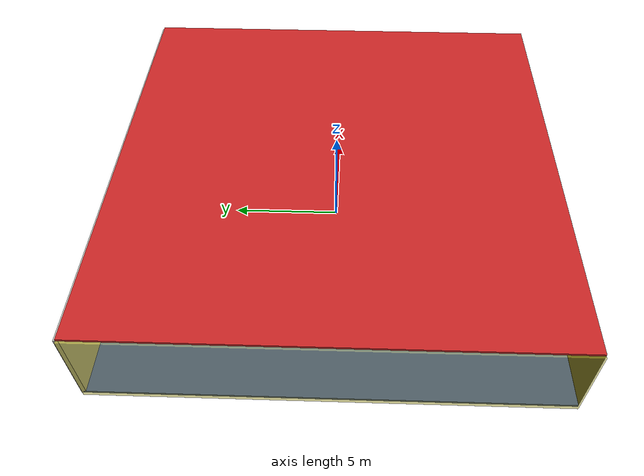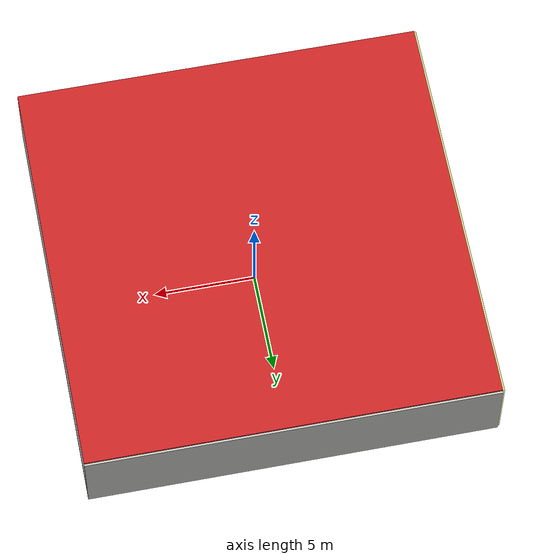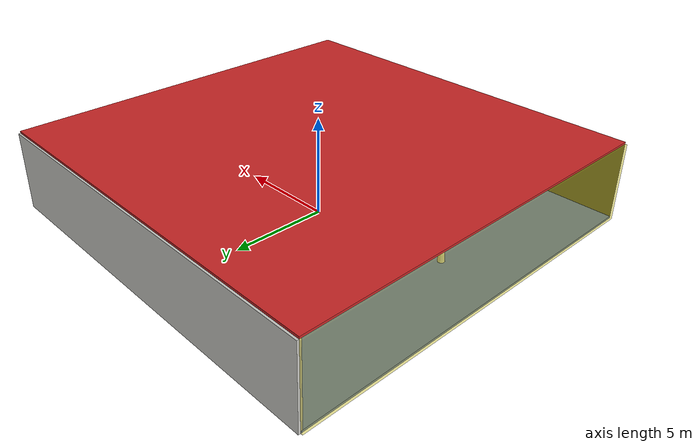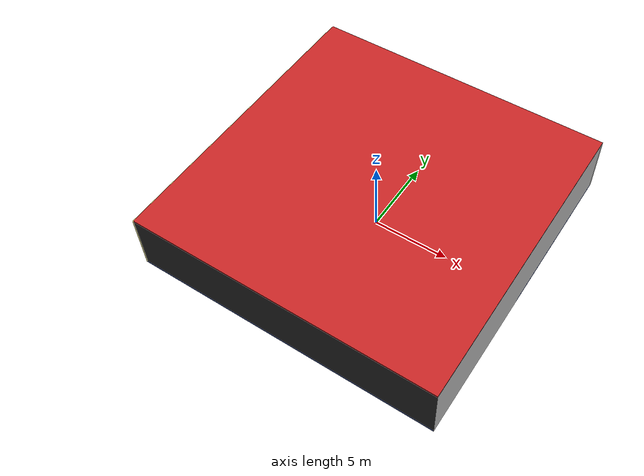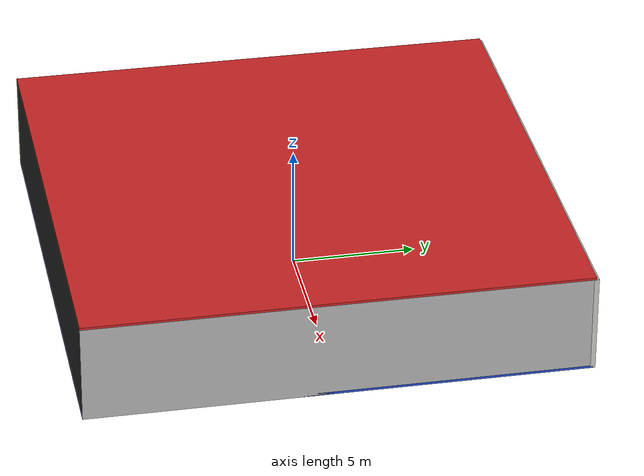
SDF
<sdf version="1.4">
 <world name="default">
  <physics type="ode">
   <max_step_size>0.001</max_step_size>
   <real_time_factor>1</real_time_factor>
   <real_time_update_rate>1000</real_time_update_rate>
   <gravity>0 0 -9.8</gravity>
  </physics>
  <scene><ambient>0.4 0.4 0.4 1</ambient><background>0.7 0.7 0.7 1</background><shadows>1</shadows></scene>
  <model name="Surrounding">
   <static>1</static>
   <link name="Ceiling">
    <collision name="Ceiling_Collision"><geometry><box><size>20 20 0.1</size></box></geometry></collision>
    <visual name="Ceiling_Visual">
     <geometry><box><size>20 20 0.1</size></box></geometry>
     <material>
      <script><uri>file://media/materials/scripts/gazebo.material</uri><name>Gazebo/RedGlow</name></script>
     </material>
    </visual>
    <pose>0 0 4.05 0 0 0</pose>
   </link>
   <link name="Wall_South">
    <collision name="Wall_South_Collision">
     <geometry><box><size>20 0 4</size></box></geometry>
     <pose>0 0 2 0 -0 0</pose>
    </collision>
    <visual name="Wall_South_Visual">
     <pose>0 0 2 0 -0 0</pose>
     <geometry><box><size>20 0 4</size></box></geometry>
     <material>
      <script><uri>file://media/materials/scripts/gazebo.material</uri><name>Gazebo/FlatBlack</name></script>
     </material>
    </visual>
    <velocity_decay><linear>0</linear><angular>0</angular></velocity_decay>
    <pose>0 -10 0 0 -0 0</pose>
   </link>
   <link name="Wall_East">
    <collision name="Wall_21_Collision">
     <geometry><box><size>20 0 4</size></box></geometry>
     <pose>0 0 2 0 -0 0</pose>
    </collision>
    <visual name="Wall_21_Visual">
     <pose>0 0 2 0 -0 0</pose>
     <geometry><box><size>20 0 4</size></box></geometry>
     <material>
      <script><uri>file://media/materials/scripts/gazebo.material</uri><name>Gazebo/LightOff</name></script>
     </material>
    </visual>
    <velocity_decay><linear>0</linear><angular>0</angular></velocity_decay>
    <pose>10 0 0 0 -0 1.5708</pose>
   </link>
   <link name="Wall_North">
    <collision name="Wall_22_Collision">
     <geometry><box><size>20 0.2 4</size></box></geometry>
     <pose>0 0 2 0 -0 0</pose>
    </collision>
    <visual name="Wall_22_Visual">
     <pose>0 0 2 0 -0 0</pose>
     <geometry><box><size>20 0.2 4</size></box></geometry>
     <material>
      <script><uri>file://media/materials/scripts/gazebo.material</uri><name>Gazebo/CeilingTiled</name></script>
     </material>
    </visual>
    <velocity_decay><linear>0</linear><angular>0</angular></velocity_decay>
    <pose>0 10 0 0 -0 0</pose>
   </link>
   <link name="Wall_West">
    <collision name="Wall_23_Collision">
     <geometry><box><size>20 0.2 4</size></box></geometry>
     <pose>0 0 2 0 -0 0</pose>
    </collision>
    <visual name="Wall_23_Visual">
     <pose>0 0 2 0 -0 0</pose>
     <geometry><box><size>20 0.2 4</size></box></geometry>
     <material>
      <script>
       <uri>file://media/materials/scripts/gazebo.material</uri>
       <name>Gazebo/YellowTransparent</name>
      </script>
     </material>
    </visual>
    <velocity_decay><linear>0</linear><angular>0</angular></velocity_decay>
    <pose>-10 0 0 0 0 -1.5708</pose>
   </link>
   <link name="Ground_link">
    <collision name="collision">
     <pose>0 0 .05 0 -0 0</pose>
     <geometry><box><size>20 20 0.1</size></box></geometry>
    </collision>
    <visual name="visual">
     <pose>0 0 .05 0 -0 0</pose>
     <geometry><box><size>20 20 0.1</size></box></geometry>
     <material>
      <script><uri>file://media/materials/scripts/gazebo.material</uri><name>Gazebo/BlueLaser</name></script>
     </material>
    </visual>
   </link>
   <static>1</static>
  </model>
  <spherical_coordinates>
   <surface_model>EARTH_WGS84</surface_model>
   <latitude_deg>0</latitude_deg>
   <longitude_deg>0</longitude_deg>
   <elevation>0</elevation>
   <heading_deg>0</heading_deg>
  </spherical_coordinates>
  <light name="lightball_0" type="diffuse">
   <diffuse>0.8 0.8 0.8 1</diffuse>
   <specular>0.2 0.2 0.2 1</specular>
   <attenuation>
    <range>100</range>
    <constant>0.7</constant>
    <linear>0.01</linear>
    <quadratic>0.001</quadratic>
   </attenuation>
   <direction>-0.5 0.1 -0.9</direction>
   <pose>-4.93213671046 1.3495396834 1.76017227097 0 0 0</pose>
  </light>
  <light name="lightball_1" type="diffuse">
   <diffuse>0.8 0.8 0.8 1</diffuse>
   <specular>0.2 0.2 0.2 1</specular>
   <attenuation>
    <range>100</range>
    <constant>0.7</constant>
    <linear>0.01</linear>
    <quadratic>0.001</quadratic>
   </attenuation>
   <direction>-0.5 0.1 -0.9</direction>
   <pose>-3.05878168099 -9.77859355595 3.82193215339 0 0 0</pose>
  </light>
  <light name="lightball_2" type="diffuse">
   <diffuse>0.8 0.8 0.8 1</diffuse>
   <specular>0.2 0.2 0.2 1</specular>
   <attenuation>
    <range>100</range>
    <constant>0.7</constant>
    <linear>0.01</linear>
    <quadratic>0.001</quadratic>
   </attenuation>
   <direction>-0.5 0.1 -0.9</direction>
   <pose>4.38440118532 -8.38476405851 3.85992140215 0 0 0</pose>
  </light>
  <light name="lightball_3" type="diffuse">
   <diffuse>0.8 0.8 0.8 1</diffuse>
   <specular>0.2 0.2 0.2 1</specular>
   <attenuation>
    <range>100</range>
    <constant>0.7</constant>
    <linear>0.01</linear>
    <quadratic>0.001</quadratic>
   </attenuation>
   <direction>-0.5 0.1 -0.9</direction>
   <pose>-0.696192751756 -1.20982789791 1.10585318586 0 0 0</pose>
  </light>
  <light name="lightball_4" type="diffuse">
   <diffuse>0.8 0.8 0.8 1</diffuse>
   <specular>0.2 0.2 0.2 1</specular>
   <attenuation>
    <range>100</range>
    <constant>0.7</constant>
    <linear>0.01</linear>
    <quadratic>0.001</quadratic>
   </attenuation>
   <direction>-0.5 0.1 -0.9</direction>
   <pose>-3.32356564994 1.51288899748 1.22926623028 0 0 0</pose>
  </light>
  <light name="lightball_5" type="diffuse">
   <diffuse>0.8 0.8 0.8 1</diffuse>
   <specular>0.2 0.2 0.2 1</specular>
   <attenuation>
    <range>100</range>
    <constant>0.7</constant>
    <linear>0.01</linear>
    <quadratic>0.001</quadratic>
   </attenuation>
   <direction>-0.5 0.1 -0.9</direction>
   <pose>-2.22189491976 -6.85957827398 2.02939272002 0 0 0</pose>
  </light>
  <light name="lightball_6" type="diffuse">
   <diffuse>0.8 0.8 0.8 1</diffuse>
   <specular>0.2 0.2 0.2 1</specular>
   <attenuation>
    <range>100</range>
    <constant>0.7</constant>
    <linear>0.01</linear>
    <quadratic>0.001</quadratic>
   </attenuation>
   <direction>-0.5 0.1 -0.9</direction>
   <pose>-5.07753149582 -2.55393183778 0.761831806617 0 0 0</pose>
  </light>
  <include>
   <uri>model://construction_cone</uri>
   <pose>-6.86105974974 -1.0369775585 0 0 0 1.55118115482</pose>
  </include>
  <include><uri>model://cabinet</uri><pose>-2.14249204499 4.25983377766 0 0 0 0.44344706833</pose></include>
  <include><uri>model://cabinet</uri><pose>1.68300797912 -1.38014084611 0 0 0 1.10815622078</pose></include>
  <include>
   <uri>model://robocup_3Dsim_goal</uri>
   <pose>1.94876270955 4.18076603807 0 0 0 0.8341260978</pose>
  </include>
  <include>
   <uri>model://textured_shapes</uri>
   <pose>4.34976186251 2.03110550672 0 0 0 0.308166905174</pose>
  </include>
 </world>
</sdf>

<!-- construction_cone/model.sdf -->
<sdf version="1.5">
  <model name="Construction Cone">
    <link name="link">
      <collision name="collision">
        <geometry>
          <mesh>
            <scale>10 10 10</scale>
            <uri>file://isr-testbed/construction_cone/meshes/construction_cone.dae</uri>
          </mesh>
        </geometry>
      </collision>
      <visual name="visual">
        <geometry>
          <mesh>
            <scale>10 10 10</scale>
            <uri>file://isr-testbed/construction_cone/meshes/construction_cone.dae</uri>
          </mesh>
        </geometry>
      </visual>
    </link>
  </model>
</sdf>

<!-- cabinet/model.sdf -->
<sdf version="1.5">
  <model name="cabinet">
    <static>true</static>
    <link name="cabinet_bottom_plate">
      <inertial>
        <pose>0 0 -1 0 0 0</pose>
        <inertia>
          <ixx>2.050000</ixx>
          <ixy>0</ixy>
          <ixz>0</ixz>
          <iyy>2.050000</iyy>
          <iyz>0</iyz>
          <izz>2.050000</izz>
        </inertia>
        <mass>25.000000</mass>
      </inertial>
      <collision name="cabinet_bottom_plate_geom">
        <pose>0 0 0.010000 0 0 0</pose>
        <geometry>
          <box>
            <size>0.450000 0.450000 0.020000</size>
          </box>
        </geometry>
      </collision>
      <visual name="cabinet_bottom_plate_geom_visual">
        <pose>0 0 0.010000 0 0 0</pose>
        <geometry>
          <box>
            <size>0.450000 0.450000 0.020000</size>
          </box>
        </geometry>
        <material>
          <script>
            <uri>model://media/materials/scripts/gazebo.material</uri>
            <name>Gazebo/Wood</name>
          </script>
        </material>
      </visual>
      <collision name="cabinet_bottom_plate_geom_cabinet_back_plate">
        <pose>0.235000 0 0.510000 0 0 0</pose>
        <geometry>
          <box>
            <size>0.020000 0.450000 1.020000</size>
          </box>
        </geometry>
      </collision>
      <visual name="cabinet_bottom_plate_geom_cabinet_back_plate_visual">
        <pose>0.235000 0 0.510000 0 0 0</pose>
        <geometry>
          <box>
            <size>0.020000 0.450000 1.020000</size>
          </box>
        </geometry>
        <material>
          <script>
            <uri>model://media/materials/scripts/gazebo.material</uri>
            <name>Gazebo/Wood</name>
          </script>
        </material>
      </visual>
      <collision name="cabinet_bottom_plate_geom_cabinet_left_plate">
        <pose>0 0.235000 0.510000 0 0 0</pose>
        <geometry>
          <box>
            <size>0.450000 0.020000 1.020000</size>
          </box>
        </geometry>
      </collision>
      <visual name="cabinet_bottom_plate_geom_cabinet_left_plate_visual">
        <pose>0 0.235000 0.510000 0 0 0</pose>
        <geometry>
          <box>
            <size>0.450000 0.020000 1.020000</size>
          </box>
        </geometry>
        <material>
          <script>
            <uri>model://media/materials/scripts/gazebo.material</uri>
            <name>Gazebo/Wood</name>
          </script>
        </material>
      </visual>
      <collision name="cabinet_bottom_plate_geom_cabinet_middle_plate">
        <pose>0 0 0.510000 0 0 0</pose>
        <geometry>
          <box>
            <size>0.450000 0.450000 0.020000</size>
          </box>
        </geometry>
      </collision>
      <visual name="cabinet_bottom_plate_geom_cabinet_middle_plate_visual">
        <pose>0 0 0.510000 0 0 0</pose>
        <geometry>
          <box>
            <size>0.450000 0.450000 0.020000</size>
          </box>
        </geometry>
        <material>
          <script>
            <uri>model://media/materials/scripts/gazebo.material</uri>
            <name>Gazebo/Wood</name>
          </script>
        </material>
      </visual>
      <collision name="cabinet_bottom_plate_geom_cabinet_right_plate">
        <pose>0 -0.235000 0.510000 0 0 0</pose>
        <geometry>
          <box>
            <size>0.450000 0.020000 1.020000</size>
          </box>
        </geometry>
      </collision>
      <visual name="cabinet_bottom_plate_geom_cabinet_right_plate_visual">
        <pose>0 -0.235000 0.510000 0 0 0</pose>
        <geometry>
          <box>
            <size>0.450000 0.020000 1.020000</size>
          </box>
        </geometry>
        <material>
          <script>
            <uri>model://media/materials/scripts/gazebo.material</uri>
            <name>Gazebo/Wood</name>
          </script>
        </material>
      </visual>
      <collision name="cabinet_bottom_plate_geom_cabinet_top_plate">
        <pose>0 0 1.010000 0 0 0</pose>
        <geometry>
          <box>
            <size>0.450000 0.450000 0.020000</size>
          </box>
        </geometry>
      </collision>
      <visual name="cabinet_bottom_plate_geom_cabinet_top_plate_visual">
        <pose>0 0 1.010000 0 0 0</pose>
        <geometry>
          <box>
            <size>0.450000 0.450000 0.020000</size>
          </box>
        </geometry>
        <material>
          <script>
            <uri>model://media/materials/scripts/gazebo.material</uri>
            <name>Gazebo/Wood</name>
          </script>
        </material>
      </visual>
    </link>
  </model>
</sdf>

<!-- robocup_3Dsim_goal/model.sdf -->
<sdf version="1.5">
  <model name="robocup_3d_goal">
    <static>true</static>
    <link name="left_post">
      <pose>0 1.05 0.45 0 0 0</pose>
      <collision name="collision">
        <geometry>
          <cylinder>
            <radius>0.05</radius>
            <length>0.9</length>
          </cylinder>
        </geometry>
      </collision>
      <visual name="visual">
        <geometry>
          <cylinder>
            <radius>0.05</radius>
            <length>0.9</length>
          </cylinder>
        </geometry>
        <material>
          <script>
            <uri>file://media/materials/scripts/gazebo.material</uri>
            <name>Gazebo/ZincYellow</name>
          </script>
        </material>
      </visual>
    </link>
    <link name="left_support_horiz_lower">
      <pose>0.30 1.05 0.01 0 0 0</pose>
      <collision name="collision">
        <geometry>
          <box>
            <size>0.50 0.02 0.02</size>
          </box>
        </geometry>
      </collision>
      <visual name="visual">
        <geometry>
          <box>
            <size>0.50 0.02 0.02</size>
          </box>
        </geometry>
        <material>
          <script>
            <uri>file://media/materials/scripts/gazebo.material</uri>
            <name>Gazebo/White</name>
          </script>
        </material>
      </visual>
    </link>
    <link name="left_support_horiz_upper">
      <pose>0.30 1.05 0.79 0 0 0</pose>
      <collision name="collision">
        <geometry>
          <box>
            <size>0.50 0.02 0.02</size>
          </box>
        </geometry>
      </collision>
      <visual name="visual">
        <geometry>
          <box>
            <size>0.50 0.02 0.02</size>
          </box>
        </geometry>
        <material>
          <script>
            <uri>file://media/materials/scripts/gazebo.material</uri>
            <name>Gazebo/White</name>
          </script>
        </material>
      </visual>
    </link>
    <link name="left_support_vertical">
      <pose>0.56 1.05 0.4 0 1.5708 0</pose>
      <collision name="collision">
        <geometry>
          <box>
            <size>0.80 0.02 0.02</size>
          </box>
        </geometry>
      </collision>
      <visual name="visual">
        <geometry>
          <box>
            <size>0.80 0.02 0.02</size>
          </box>
        </geometry>
        <material>
          <script>
            <uri>file://media/materials/scripts/gazebo.material</uri>
            <name>Gazebo/White</name>
          </script>
        </material>
      </visual>
    </link>
    <link name="right_support_horiz_lower">
      <pose>0.30 -1.05 0.01 0 0 0</pose>
      <collision name="collision">
        <geometry>
          <box>
            <size>0.50 0.02 0.02</size>
          </box>
        </geometry>
      </collision>
      <visual name="visual">
        <geometry>
          <box>
            <size>0.50 0.02 0.02</size>
          </box>
        </geometry>
        <material>
          <script>
            <uri>file://media/materials/scripts/gazebo.material</uri>
            <name>Gazebo/White</name>
          </script>
        </material>
      </visual>
    </link>
    <link name="right_support_horiz_upper">
      <pose>0.30 -1.05 0.79 0 0 0</pose>
      <collision name="collision">
        <geometry>
          <box>
            <size>0.50 0.02 0.02</size>
          </box>
        </geometry>
      </collision>
      <visual name="visual">
        <geometry>
          <box>
            <size>0.50 0.02 0.02</size>
          </box>
        </geometry>
        <material>
          <script>
            <uri>file://media/materials/scripts/gazebo.material</uri>
            <name>Gazebo/White</name>
          </script>
        </material>
      </visual>
    </link>
    <link name="right_support_vertical">
      <pose>0.56 -1.05 0.4 0 1.5708 0</pose>
      <collision name="collision">
        <geometry>
          <box>
            <size>0.80 0.02 0.02</size>
          </box>
        </geometry>
      </collision>
      <visual name="visual">
        <geometry>
          <box>
            <size>0.80 0.02 0.02</size>
          </box>
        </geometry>
        <material>
          <script>
            <uri>file://media/materials/scripts/gazebo.material</uri>
            <name>Gazebo/White</name>
          </script>
        </material>
      </visual>
    </link>
    <link name="center_support_horiz_lower">
      <pose>0.56 0 0.01 0 1.5708 0</pose>
      <collision name="collision">
        <geometry>
          <box>
            <size>0.02 2.08 0.02</size>
          </box>
        </geometry>
      </collision>
      <visual name="visual">
        <geometry>
          <box>
            <size>0.02 2.08 0.02</size>
          </box>
        </geometry>
        <material>
          <script>
            <uri>file://media/materials/scripts/gazebo.material</uri>
            <name>Gazebo/White</name>
          </script>
        </material>
      </visual>
    </link>
    <link name="center_support_horiz_upper">
      <pose>0.56 0 0.79 0 1.5708 0</pose>
      <collision name="collision">
        <geometry>
          <box>
            <size>0.02 2.08 0.02</size>
          </box>
        </geometry>
      </collision>
      <visual name="visual">
        <geometry>
          <box>
            <size>0.02 2.08 0.02</size>
          </box>
        </geometry>
        <material>
          <script>
            <uri>file://media/materials/scripts/gazebo.material</uri>
            <name>Gazebo/White</name>
          </script>
        </material>
      </visual>
    </link>
    <link name="right_post">
      <pose>0 -1.05 0.45 0 0 0</pose>
      <collision name="collision">
        <geometry>
          <cylinder>
            <radius>0.05</radius>
            <length>0.9</length>
          </cylinder>
        </geometry>
      </collision>
      <visual name="visual">
        <geometry>
          <cylinder>
            <radius>0.05</radius>
            <length>0.9</length>
          </cylinder>
        </geometry>
        <material>
          <script>
            <uri>file://media/materials/scripts/gazebo.material</uri>
            <name>Gazebo/ZincYellow</name>
          </script>
        </material>
      </visual>
    </link>
    <link name="crossbar">
      <pose>0 0 0.85 1.57 1.57 0</pose>
      <collision name="collision">
        <geometry>
          <cylinder>
            <radius>0.05</radius>
            <length>2.0</length>
          </cylinder>
        </geometry>
      </collision>
      <visual name="visual">
        <geometry>
          <cylinder>
            <radius>0.05</radius>
            <length>2.0</length>
          </cylinder>
        </geometry>
        <material>
          <script>
            <uri>file://media/materials/scripts/gazebo.material</uri>
            <name>Gazebo/ZincYellow</name>
          </script>
        </material>
      </visual>
    </link>
    <link name="center_net">
      <pose>0.56 0 0.40 0 0 0</pose>
      <collision name="collision">
        <geometry>
          <box>
            <size>0.01 2.1 0.80</size>
          </box>
        </geometry>
      </collision>
      <visual name="visual">
        <geometry>
          <box>
            <size>0.01 2.1 0.80</size>
          </box>
        </geometry>
        <material>
          <script>
            <uri>model://../model_source/models/robocup09_spl_field/materials/scripts/</uri>
            <uri>model://../model_source/models/robocup09_spl_field/materials/textures/</uri>
            <name>RoboCup/Net</name>
          </script>
        </material>
      </visual>
    </link>
    <link name="left_net">
      <pose>0.30 1.05 0.40 0 0 0</pose>
      <collision name="collision">
        <geometry>
          <box>
            <size>0.50 0.01 0.76</size>
          </box>
        </geometry>
      </collision>
      <visual name="visual">
        <geometry>
          <box>
            <size>0.50 0.01 0.76</size>
          </box>
        </geometry>
        <material>
          <script>
            <uri>model://../model_source/models/robocup09_spl_field/materials/scripts/</uri>
            <uri>model://../model_source/models/robocup09_spl_field/materials/textures/</uri>
            <name>RoboCup/Net</name>
          </script>
        </material>
      </visual>
    </link>
    <link name="right_net">
      <pose>0.30 -1.05 0.40 0 0 0</pose>
      <collision name="collision">
        <geometry>
          <box>
            <size>0.50 0.01 0.76</size>
          </box>
        </geometry>
      </collision>
      <visual name="visual">
        <geometry>
          <box>
            <size>0.50 0.01 0.76</size>
          </box>
        </geometry>
        <material>
          <script>
            <uri>model://../model_source/models/robocup09_spl_field/materials/scripts/</uri>
            <uri>model://../model_source/models/robocup09_spl_field/materials/textures/</uri>
            <name>RoboCup/Net</name>
          </script>
        </material>
      </visual>
    </link>
  </model>
</sdf>

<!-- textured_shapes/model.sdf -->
<sdf version="1.6">
  <model name="textured_shapes">
    <pose>0 0 0.5 0 0 0</pose>
    <link name="box">
      <pose>0 -1.5 0 0 0 0</pose>
      <collision name="collision">
        <geometry>
          <box>
            <size>1 1 1</size>
          </box>
        </geometry>
      </collision>
      <visual name="visual">
        <geometry>
          <box>
            <size>1 1 1</size>
          </box>
        </geometry>
        <material>
          <script>
            <uri>model://../model_source/models/textured_shapes/materials/scripts</uri>
            <uri>model://../model_source/models/textured_shapes/materials/textures</uri>
            <name>TexturedShape/Squares</name>
          </script>
        </material>
      </visual>
    </link>
    <link name="sphere">
      <collision name="collision">
        <geometry>
          <sphere>
            <radius>0.5</radius>
          </sphere>
        </geometry>
      </collision>
      <visual name="visual">
        <geometry>
          <sphere>
            <radius>0.5</radius>
          </sphere>
        </geometry>
        <material>
          <script>
            <uri>model://../model_source/models/textured_shapes/materials/scripts</uri>
            <uri>model://../model_source/models/textured_shapes/materials/textures</uri>
            <name>TexturedShape/Squares</name>
          </script>
        </material>
      </visual>
    </link>
    <link name="cylinder">
      <pose>0 1.5 0 0 0 0</pose>
      <collision name="collision">
        <geometry>
          <cylinder>
            <radius>0.5</radius>
            <length>1</length>
          </cylinder>
        </geometry>
      </collision>
      <visual name="visual">
        <geometry>
          <cylinder>
            <radius>0.5</radius>
            <length>1</length>
          </cylinder>
        </geometry>
        <material>
          <script>
            <uri>model://../model_source/models/textured_shapes/materials/scripts</uri>
            <uri>model://../model_source/models/textured_shapes/materials/textures</uri>
            <name>TexturedShape/Squares</name>
          </script>
        </material>
      </visual>
    </link>
  </model>
</sdf>
